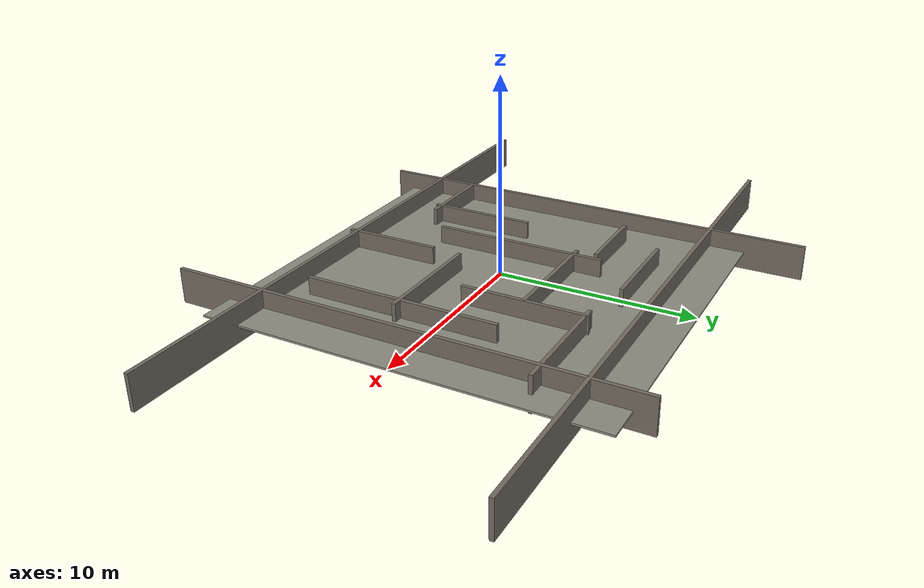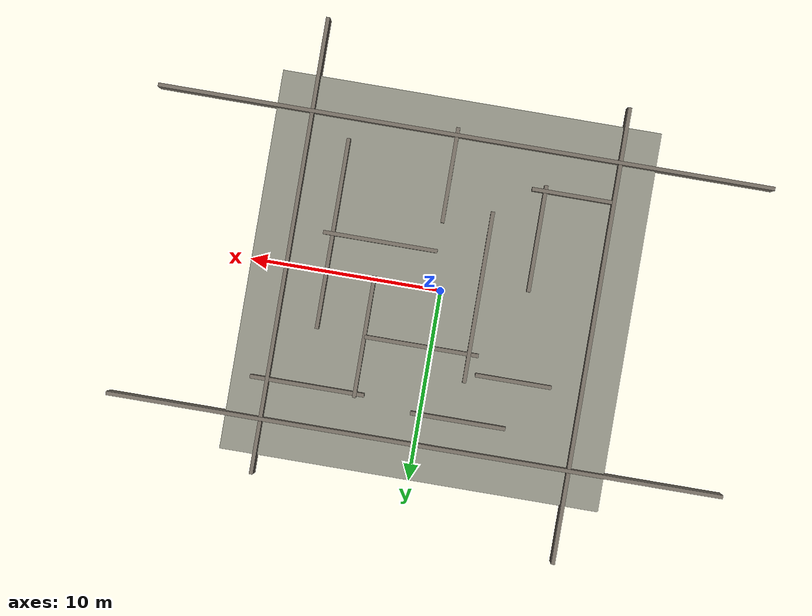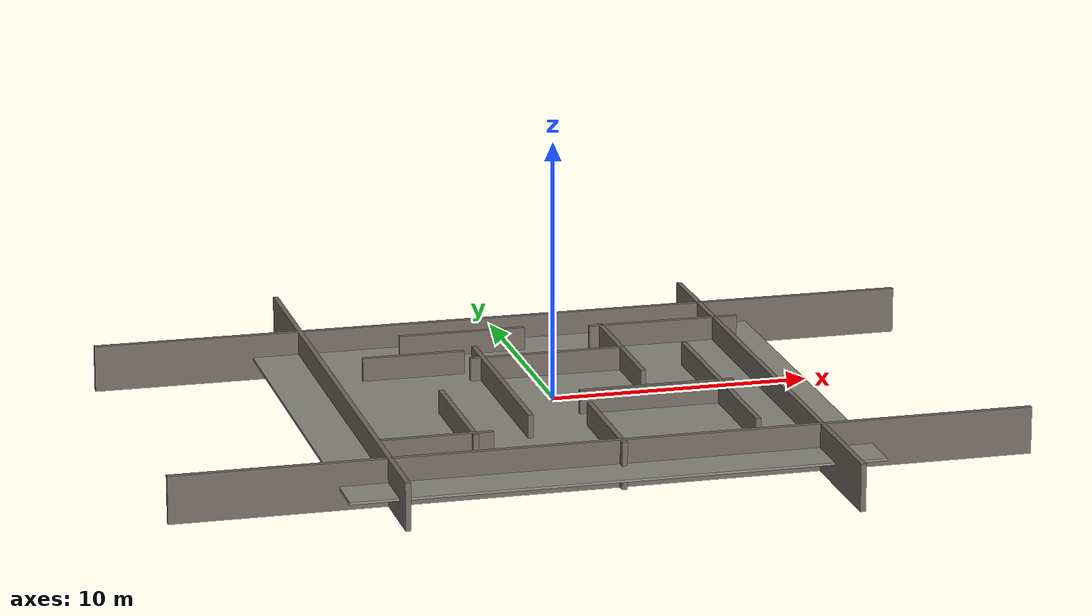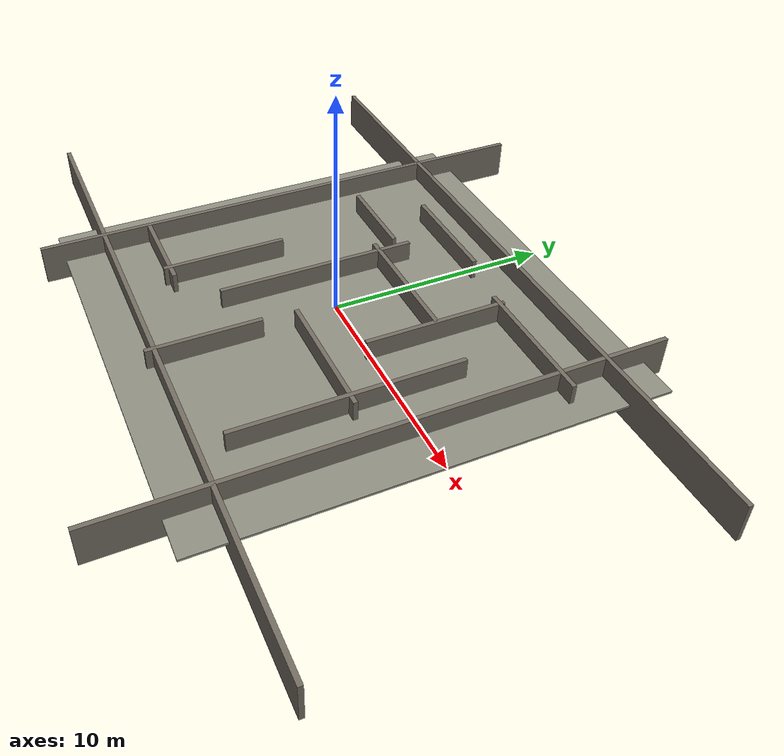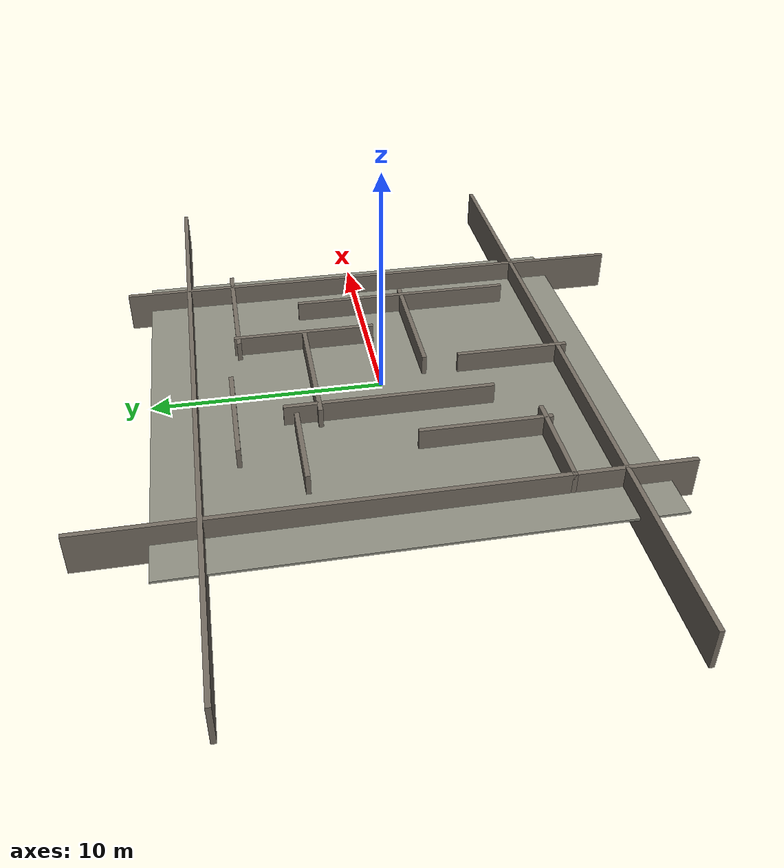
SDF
<?xml version="1.0" ?>
<sdf version="1.7">
  <world name="nav_maze">
    <physics type="ode">
      <max_step_size>0.01</max_step_size>
    </physics>

    <light name="sun" type="directional">
      <cast_shadows>true</cast_shadows>
      <pose>0 0 10 0 0 0</pose>
      <diffuse>0.8 0.8 0.8 1</diffuse>
      <specular>0.3 0.3 0.3 1</specular>
      <attenuation>
        <range>1000</range>
        <constant>0.9</constant>
        <linear>0.01</linear>
        <quadratic>0.001</quadratic>
      </attenuation>
      <direction>-0.5 0.3 -1.0</direction>
    </light>

    <model name="ground_plane">
      <static>true</static>
      <pose>0 0 -0.05 0 0 0</pose>
      <link name="link">
        <collision name="collision">
          <geometry>
            <box><size>20.0 20.0 0.1</size></box>
          </geometry>
          <surface>
            <friction>
              <ode><mu>100</mu><mu2>50</mu2></ode>
            </friction>
          </surface>
        </collision>
        <visual name="visual">
          <geometry>
            <box><size>20.0 20.0 0.1</size></box>
          </geometry>
          <material>
            <ambient>0.55 0.55 0.5 1</ambient>
            <diffuse>0.55 0.55 0.5 1</diffuse>
          </material>
        </visual>
      </link>
    </model>

    <model name="obstacle_00">
      <static>true</static>
      <pose>0.000 -8.100 0 0 0 0</pose>
      <link name="link">
        <collision name="collision">
          <geometry>
            <box><size>32.400 0.200 1.800</size></box>
          </geometry>
        </collision>
        <visual name="visual">
          <geometry>
            <box><size>32.400 0.200 1.800</size></box>
          </geometry>
          <material>
            <ambient>0.45 0.42 0.38 1</ambient>
            <diffuse>0.45 0.42 0.38 1</diffuse>
            <specular>0.1 0.1 0.1 1</specular>
          </material>
        </visual>
      </link>
    </model>

    <model name="obstacle_01">
      <static>true</static>
      <pose>0.000 8.100 0 0 0 0</pose>
      <link name="link">
        <collision name="collision">
          <geometry>
            <box><size>32.400 0.200 1.800</size></box>
          </geometry>
        </collision>
        <visual name="visual">
          <geometry>
            <box><size>32.400 0.200 1.800</size></box>
          </geometry>
          <material>
            <ambient>0.45 0.42 0.38 1</ambient>
            <diffuse>0.45 0.42 0.38 1</diffuse>
            <specular>0.1 0.1 0.1 1</specular>
          </material>
        </visual>
      </link>
    </model>

    <model name="obstacle_02">
      <static>true</static>
      <pose>-8.100 1.000 0 0 0 0</pose>
      <link name="link">
        <collision name="collision">
          <geometry>
            <box><size>0.200 24.000 1.800</size></box>
          </geometry>
        </collision>
        <visual name="visual">
          <geometry>
            <box><size>0.200 24.000 1.800</size></box>
          </geometry>
          <material>
            <ambient>0.45 0.42 0.38 1</ambient>
            <diffuse>0.45 0.42 0.38 1</diffuse>
            <specular>0.1 0.1 0.1 1</specular>
          </material>
        </visual>
      </link>
    </model>

    <model name="obstacle_03">
      <static>true</static>
      <pose>8.100 -1.000 0 0 0 0</pose>
      <link name="link">
        <collision name="collision">
          <geometry>
            <box><size>0.200 24.000 1.800</size></box>
          </geometry>
        </collision>
        <visual name="visual">
          <geometry>
            <box><size>0.200 24.000 1.800</size></box>
          </geometry>
          <material>
            <ambient>0.45 0.42 0.38 1</ambient>
            <diffuse>0.45 0.42 0.38 1</diffuse>
            <specular>0.1 0.1 0.1 1</specular>
          </material>
        </visual>
      </link>
    </model>

    <model name="obstacle_04">
      <static>true</static>
      <pose>-6.000 -6.000 0 0 0 0</pose>
      <link name="link">
        <collision name="collision">
          <geometry>
            <box><size>4.400 0.200 1.800</size></box>
          </geometry>
        </collision>
        <visual name="visual">
          <geometry>
            <box><size>4.400 0.200 1.800</size></box>
          </geometry>
          <material>
            <ambient>0.45 0.42 0.38 1</ambient>
            <diffuse>0.45 0.42 0.38 1</diffuse>
            <specular>0.1 0.1 0.1 1</specular>
          </material>
        </visual>
      </link>
    </model>

    <model name="obstacle_05">
      <static>true</static>
      <pose>-4.500 -3.500 0 0 0 0</pose>
      <link name="link">
        <collision name="collision">
          <geometry>
            <box><size>0.200 5.600 1.800</size></box>
          </geometry>
        </collision>
        <visual name="visual">
          <geometry>
            <box><size>0.200 5.600 1.800</size></box>
          </geometry>
          <material>
            <ambient>0.45 0.42 0.38 1</ambient>
            <diffuse>0.45 0.42 0.38 1</diffuse>
            <specular>0.1 0.1 0.1 1</specular>
          </material>
        </visual>
      </link>
    </model>

    <model name="obstacle_06">
      <static>true</static>
      <pose>-4.500 4.000 0 0 0 0</pose>
      <link name="link">
        <collision name="collision">
          <geometry>
            <box><size>4.000 0.200 1.800</size></box>
          </geometry>
        </collision>
        <visual name="visual">
          <geometry>
            <box><size>4.000 0.200 1.800</size></box>
          </geometry>
          <material>
            <ambient>0.45 0.42 0.38 1</ambient>
            <diffuse>0.45 0.42 0.38 1</diffuse>
            <specular>0.1 0.1 0.1 1</specular>
          </material>
        </visual>
      </link>
    </model>

    <model name="obstacle_07">
      <static>true</static>
      <pose>-2.000 0.000 0 0 0 0</pose>
      <link name="link">
        <collision name="collision">
          <geometry>
            <box><size>0.200 9.000 1.800</size></box>
          </geometry>
        </collision>
        <visual name="visual">
          <geometry>
            <box><size>0.200 9.000 1.800</size></box>
          </geometry>
          <material>
            <ambient>0.45 0.42 0.38 1</ambient>
            <diffuse>0.45 0.42 0.38 1</diffuse>
            <specular>0.1 0.1 0.1 1</specular>
          </material>
        </visual>
      </link>
    </model>

    <model name="obstacle_08">
      <static>true</static>
      <pose>-2.000 6.500 0 0 0 0</pose>
      <link name="link">
        <collision name="collision">
          <geometry>
            <box><size>5.000 0.200 1.800</size></box>
          </geometry>
        </collision>
        <visual name="visual">
          <geometry>
            <box><size>5.000 0.200 1.800</size></box>
          </geometry>
          <material>
            <ambient>0.45 0.42 0.38 1</ambient>
            <diffuse>0.45 0.42 0.38 1</diffuse>
            <specular>0.1 0.1 0.1 1</specular>
          </material>
        </visual>
      </link>
    </model>

    <model name="obstacle_09">
      <static>true</static>
      <pose>0.500 -6.000 0 0 0 0</pose>
      <link name="link">
        <collision name="collision">
          <geometry>
            <box><size>0.200 5.000 1.800</size></box>
          </geometry>
        </collision>
        <visual name="visual">
          <geometry>
            <box><size>0.200 5.000 1.800</size></box>
          </geometry>
          <material>
            <ambient>0.45 0.42 0.38 1</ambient>
            <diffuse>0.45 0.42 0.38 1</diffuse>
            <specular>0.1 0.1 0.1 1</specular>
          </material>
        </visual>
      </link>
    </model>

    <model name="obstacle_10">
      <static>true</static>
      <pose>0.500 3.000 0 0 0 0</pose>
      <link name="link">
        <collision name="collision">
          <geometry>
            <box><size>6.000 0.200 1.800</size></box>
          </geometry>
        </collision>
        <visual name="visual">
          <geometry>
            <box><size>6.000 0.200 1.800</size></box>
          </geometry>
          <material>
            <ambient>0.45 0.42 0.38 1</ambient>
            <diffuse>0.45 0.42 0.38 1</diffuse>
            <specular>0.1 0.1 0.1 1</specular>
          </material>
        </visual>
      </link>
    </model>

    <model name="obstacle_11">
      <static>true</static>
      <pose>3.500 3.000 0 0 0 0</pose>
      <link name="link">
        <collision name="collision">
          <geometry>
            <box><size>0.200 6.400 1.800</size></box>
          </geometry>
        </collision>
        <visual name="visual">
          <geometry>
            <box><size>0.200 6.400 1.800</size></box>
          </geometry>
          <material>
            <ambient>0.45 0.42 0.38 1</ambient>
            <diffuse>0.45 0.42 0.38 1</diffuse>
            <specular>0.1 0.1 0.1 1</specular>
          </material>
        </visual>
      </link>
    </model>

    <model name="obstacle_12">
      <static>true</static>
      <pose>3.500 -2.000 0 0 0 0</pose>
      <link name="link">
        <collision name="collision">
          <geometry>
            <box><size>6.000 0.200 1.800</size></box>
          </geometry>
        </collision>
        <visual name="visual">
          <geometry>
            <box><size>6.000 0.200 1.800</size></box>
          </geometry>
          <material>
            <ambient>0.45 0.42 0.38 1</ambient>
            <diffuse>0.45 0.42 0.38 1</diffuse>
            <specular>0.1 0.1 0.1 1</specular>
          </material>
        </visual>
      </link>
    </model>

    <model name="obstacle_13">
      <static>true</static>
      <pose>6.000 -2.000 0 0 0 0</pose>
      <link name="link">
        <collision name="collision">
          <geometry>
            <box><size>0.200 10.000 1.800</size></box>
          </geometry>
        </collision>
        <visual name="visual">
          <geometry>
            <box><size>0.200 10.000 1.800</size></box>
          </geometry>
          <material>
            <ambient>0.45 0.42 0.38 1</ambient>
            <diffuse>0.45 0.42 0.38 1</diffuse>
            <specular>0.1 0.1 0.1 1</specular>
          </material>
        </visual>
      </link>
    </model>

    <model name="obstacle_14">
      <static>true</static>
      <pose>6.000 6.000 0 0 0 0</pose>
      <link name="link">
        <collision name="collision">
          <geometry>
            <box><size>6.000 0.200 1.800</size></box>
          </geometry>
        </collision>
        <visual name="visual">
          <geometry>
            <box><size>6.000 0.200 1.800</size></box>
          </geometry>
          <material>
            <ambient>0.45 0.42 0.38 1</ambient>
            <diffuse>0.45 0.42 0.38 1</diffuse>
            <specular>0.1 0.1 0.1 1</specular>
          </material>
        </visual>
      </link>
    </model>

  </world>
</sdf>
